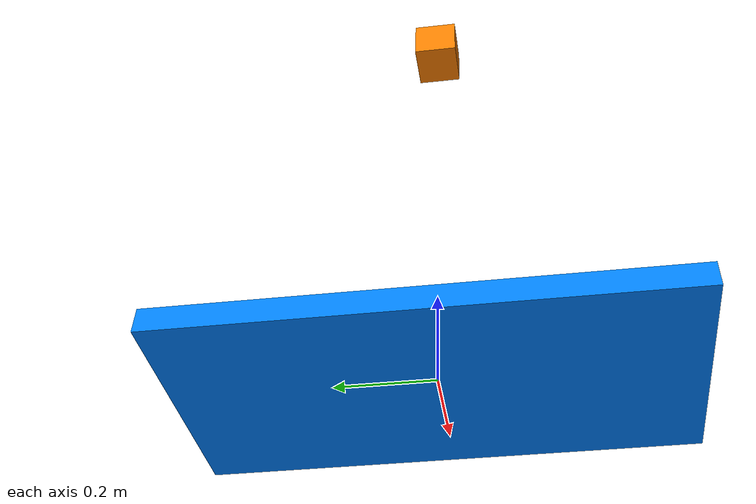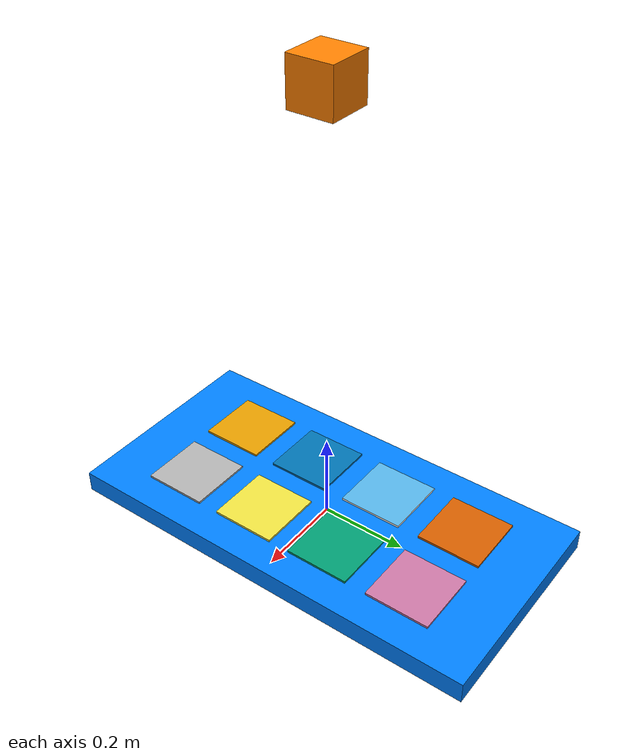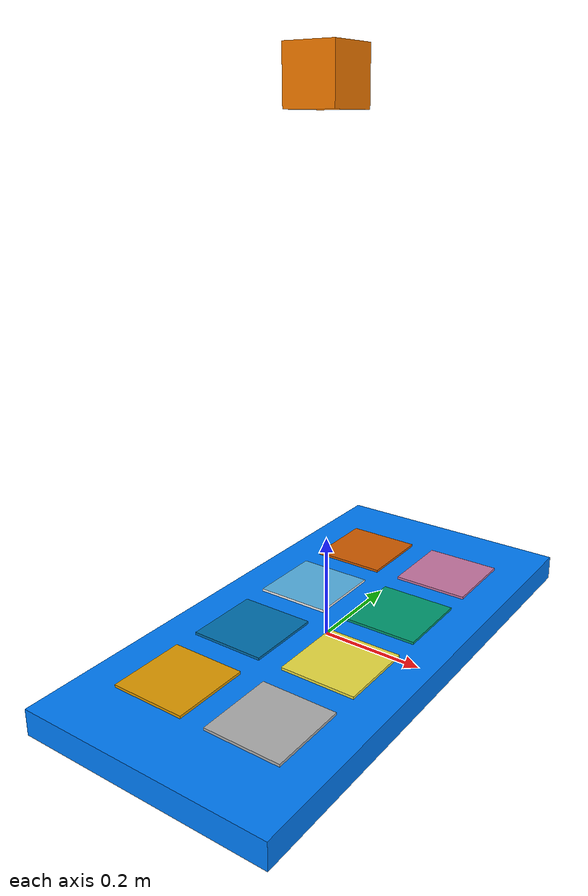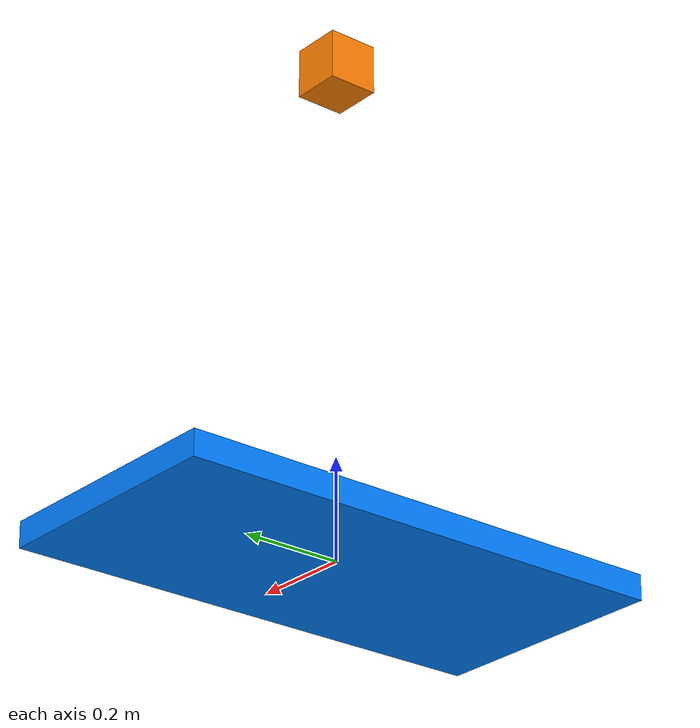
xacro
<?xml version="1.0"?>
<robot xmlns:xacro="http://www.ros.org/wiki/xacro" name="aruco_robot">

  <xacro:property name="M_PI" value="3.1415926"/>
  <xacro:property name="base_x" value="0.5"/>
  <xacro:property name="base_y" value="1.0"/>
  <xacro:property name="base_z" value="0.05"/>
  <xacro:property name="link_xy" value="0.05"/>
  <xacro:property name="link_z" value="1.0"/>
  <xacro:property name="tcp_x" value="0.1"/>
  <xacro:property name="tcp_y" value="0.1"/>
  <xacro:property name="tcp_z" value="0.1"/>
  <xacro:property name="move" value="0.1"/>
  <xacro:property name="board_edge" value="0.1"/>

  <material name="blue">
    <color rgba="0.0 0.5 1.0 1.0"/>
  </material>

  <material name="red">
    <color rgba="1.0 0.5 0.0 1.0"/>
  </material>

  <!-- base -->
  <link name="base">
    <!-- base -->
    <visual>
      <origin xyz="0.0 0.0 0.0" rpy="0.0 0.0 0.0"/>
      <geometry>
        <box size="${base_x} ${base_y} ${base_z}"/>
      </geometry>
      <material name="blue"/>

    </visual>

    <collision>
      <origin xyz="0.0 0.0 0.0" rpy="0.0 0.0 0.0"/>
      <geometry>
        <box size="${base_x} ${base_y} ${base_z}"/>
      </geometry>

    </collision>

    <inertial>
      <mass value="100"/>
      <inertia ixx="10" ixy="0.0" ixz="0.0" iyy="10" iyz="0.0" izz="10"/>
    </inertial>

    <!-- link -->

    <collision>
      <origin xyz="${base_x/2} 0.0 ${link_z/2}" rpy="0.0 0.0 0.0"/>
      <geometry>
        <box size="${link_xy} ${link_xy} ${link_z}"/>
      </geometry>

    </collision>

  </link>

  <!-- board -->
  <link name="board_0">
    <visual>
      <origin xyz="${-move} ${move} ${base_z/2}" rpy="0.0 0.0 0.0"/>
      <geometry>
        <mesh filename="package://my_aruco/model/markers/board_0.dae"/>
      </geometry>

    </visual>
  </link>

  <link name="board_1">
    <visual>
      <origin xyz="${move} ${move} ${base_z/2}" rpy="0.0 0.0 0.0"/>
      <geometry>
        <mesh filename="package://my_aruco/model/markers/board_1.dae"/>
      </geometry>

    </visual>
  </link>

  <link name="board_2">
    <visual>
      <origin xyz="${move} ${-move} ${base_z/2}" rpy="0.0 0.0 0.0"/>
      <geometry>
        <mesh filename="package://my_aruco/model/markers/board_2.dae"/>
      </geometry>

    </visual>
  </link>

  <link name="board_3">
    <visual>
      <origin xyz="${-move} ${-move} ${base_z/2}" rpy="0.0 0.0 0.0"/>
      <geometry>
        <mesh filename="package://my_aruco/model/markers/board_3.dae"/>
      </geometry>

    </visual>
  </link>

  <link name="board_4">
    <visual>
      <origin xyz="${-move} ${2*move + board_edge} ${base_z/2}" rpy="0.0 0.0 0.0"/>
      <geometry>
        <mesh filename="package://my_aruco/model/markers/board_4.dae"/>
      </geometry>

    </visual>
  </link>

  <link name="board_5">
    <visual>
      <origin xyz="${move} ${2*move + board_edge} ${base_z/2}" rpy="0.0 0.0 0.0"/>
      <geometry>
        <mesh filename="package://my_aruco/model/markers/board_5.dae"/>
      </geometry>

    </visual>
  </link>

  <link name="board_6">
    <visual>
      <origin xyz="${move} ${-2*move - board_edge} ${base_z/2}" rpy="0.0 0.0 0.0"/>
      <geometry>
        <mesh filename="package://my_aruco/model/markers/board_6.dae"/>
      </geometry>

    </visual>
  </link>

  <link name="board_7">
    <visual>
      <origin xyz="${-move} ${-2*move - board_edge} ${base_z/2}" rpy="0.0 0.0 0.0"/>
      <geometry>
        <mesh filename="package://my_aruco/model/markers/board_7.dae"/>
      </geometry>

    </visual>
  </link>

  <!-- tcp -->
  <link name="tcp">
    <visual>
      <origin xyz="0.0 0.0 0.0" rpy="0.0 ${M_PI/2} 0.0"/>
      <geometry>
        <box size="${tcp_x} ${tcp_z} ${tcp_y}"/>
      </geometry>
      <material name="red"/>
    </visual>

    <collision>
      <origin xyz="0.0 0.0 0.0" rpy="0.0 0.0 0.0"/>
      <geometry>
        <box size="${tcp_x} ${tcp_z} ${tcp_y}"/>
      </geometry>
    </collision>

    <inertial>
      <mass value="0.1"/>
      <inertia ixx="0.01" ixy="0.0" ixz="0.0" iyy="0.01" iyz="0.0" izz="0.01"/>
    </inertial>
  </link>

  <!-- joint -->

  <joint name="joint_base_tcp" type="continuous">
    <parent link="base"/>
    <child link="tcp"/>
    <axis xyz="0 0 1"/>
    <origin xyz="0.0 0.0 ${link_z}" rpy="0 ${M_PI/2} 0"/>
  </joint>

  <joint name="joint_base_board_0" type="fixed">
    <parent link="base"/>
    <child link="board_0"/>
  </joint>

  <joint name="joint_base_board_1" type="fixed">
    <parent link="base"/>
    <child link="board_1"/>
  </joint>

  <joint name="joint_base_board_2" type="fixed">
    <parent link="base"/>
    <child link="board_2"/>
  </joint>

  <joint name="joint_base_board_3" type="fixed">
    <parent link="base"/>
    <child link="board_3"/>
  </joint>

  <joint name="joint_base_board_4" type="fixed">
    <parent link="base"/>
    <child link="board_4"/>
  </joint>

  <joint name="joint_base_board_5" type="fixed">
    <parent link="base"/>
    <child link="board_5"/>
  </joint>

  <joint name="joint_base_board_6" type="fixed">
    <parent link="base"/>
    <child link="board_6"/>
  </joint>

  <joint name="joint_base_board_7" type="fixed">
    <parent link="base"/>
    <child link="board_7"/>
  </joint>

  <!-- gazebo -->

  <gazebo reference="base">
    <material>Gazebo/Orange</material>
  </gazebo>

  <gazebo reference="tcp">
    <material>Gazebo/Red</material>
  </gazebo>

  <gazebo reference="tcp">
    <sensor name="tcp_camera" type="camera" update_rate="30">
      <always_on>true</always_on>
      <camera>
        <horizental_fov>1.5707</horizental_fov>
        <image>
          <width>640</width>
          <height>480</height>
          <format>RGB8</format>
        </image>
        <clip>
          <near>0.01</near>
          <far>8.0</far>
        </clip>
      </camera>
      <plugin name="camera_camera_controller" filename="libgazebo_ros_camera.so">
        <alwaysOn>true</alwaysOn>
        <updateRate>0.0</updateRate>
        <cameraName>camera</cameraName>
        <imageTopicName>image_raw</imageTopicName>
        <cameraInfoTopicName>camera_info</cameraInfoTopicName>
        <frameName>camera_link</frameName>
        <hackBaseline>0.07</hackBaseline>
        <distortionK1>0.0</distortionK1>
        <distortionK2>0.0</distortionK2>
        <distortionK3>0.0</distortionK3>
        <distortionT1>0.0</distortionT1>
        <distortionT2>0.0</distortionT2>
      </plugin>
    </sensor>

  </gazebo>

  <transmission name="tcp_joint_trans">
    <type>transmission_interface/SimpleTransmission</type>
    <joint name="joint_base_tcp">
      <hardwareInterface>hardware_interface/EffortJointInterface</hardwareInterface>
    </joint>
    <actuator name="tcp_joint_motor">
      <hardwareInterface>hardware_interface/EffortJointInterface</hardwareInterface>
      <mechanicalReduction>1</mechanicalReduction>
    </actuator>
  </transmission>

  <gazebo>
    <plugin name="gazebo_ros_control" filename="libgazebo_ros_control.so">
      <robotNamespace>/aruco_robot</robotNamespace>
    </plugin>
  </gazebo>

</robot>
